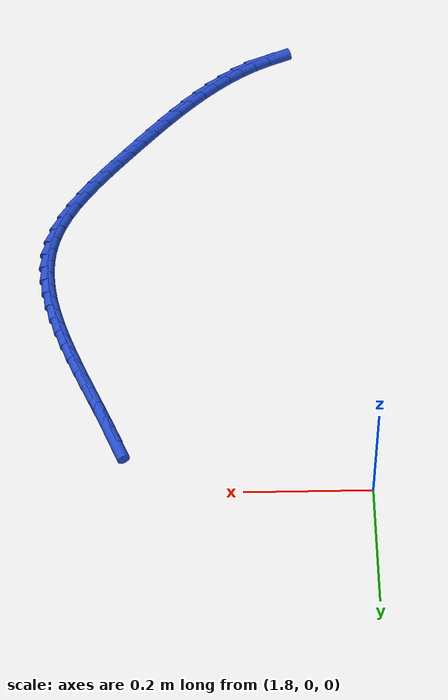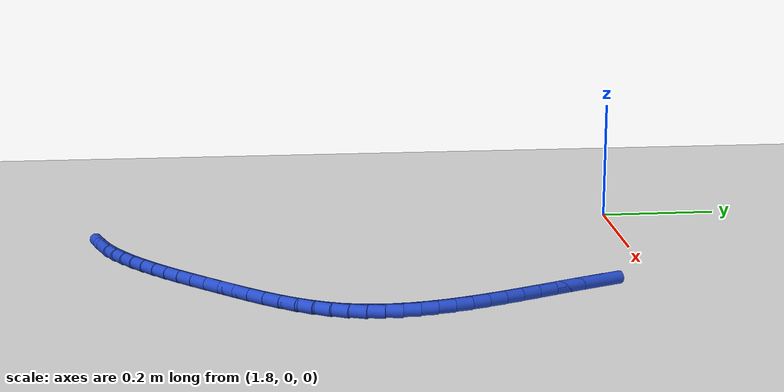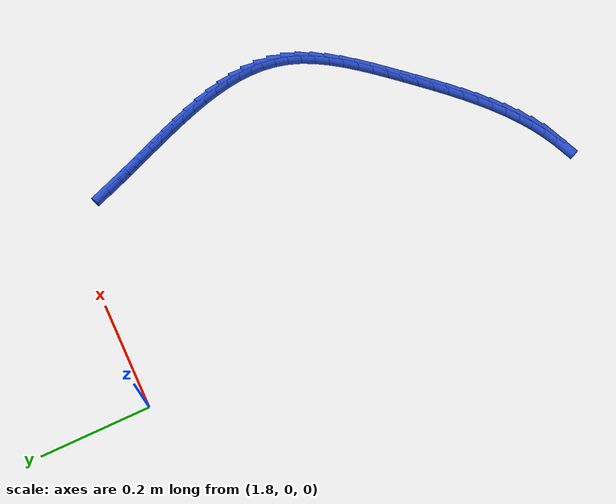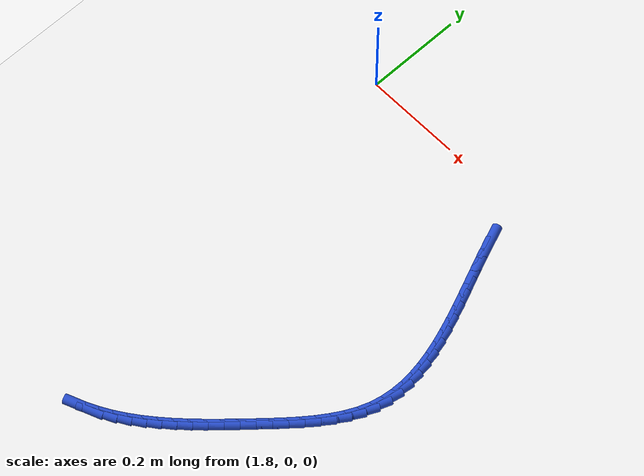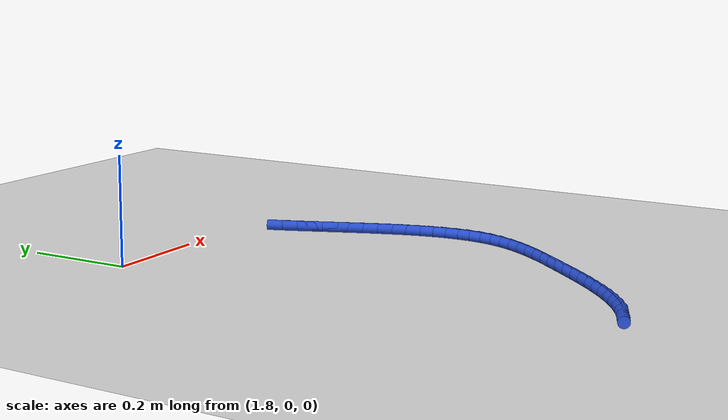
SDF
<sdf version="1.6">
 <world name="default">
  <model name="ground_plane">
   <static>1</static>
   <link name="link">
    <collision name="collision">
     <geometry><plane><normal>0 0 1</normal><size>100 100</size></plane></geometry>
     <surface><friction><ode><mu>100</mu><mu2>50</mu2></ode></friction></surface>
    </collision>
    <visual name="visual">
     <cast_shadows>0</cast_shadows>
     <geometry><plane><normal>0 0 1</normal><size>100 100</size></plane></geometry>
     <material>
      <script><uri>file://media/materials/scripts/gazebo.material</uri><name>Gazebo/WhiteGlow</name></script>
     </material>
    </visual>
   </link>
  </model>
  <model name="line">
   <link name="link_137">
    <pose>2.1986634969513794 -0.09417128476205537 0.01 0 1.57 -1.1929130961345482</pose>
    <collision name="collision">
     <geometry><cylinder><radius>0.01</radius><length>0.08</length></cylinder></geometry>
    </collision>
    <visual name="visual">
     <material>
      <script><name>Gazebo/Blue</name><uri>file://media/materials/scripts/gazebo.material</uri></script>
     </material>
     <geometry><cylinder><radius>0.01</radius><length>0.08</length></cylinder></geometry>
    </visual>
   </link>
   <link name="link_138">
    <pose>2.2097664182994072 -0.12214113574680754 0.01 0 1.57 -1.1784685675543916</pose>
    <collision name="collision">
     <geometry><cylinder><radius>0.01</radius><length>0.08</length></cylinder></geometry>
    </collision>
    <visual name="visual">
     <material>
      <script><name>Gazebo/Blue</name><uri>file://media/materials/scripts/gazebo.material</uri></script>
     </material>
     <geometry><cylinder><radius>0.01</radius><length>0.08</length></cylinder></geometry>
    </visual>
   </link>
   <link name="link_139">
    <pose>2.221284675509103 -0.14997789982116672 0.01 0 1.57 -1.171450232418282</pose>
    <collision name="collision">
     <geometry><cylinder><radius>0.01</radius><length>0.08</length></cylinder></geometry>
    </collision>
    <visual name="visual">
     <material>
      <script><name>Gazebo/Blue</name><uri>file://media/materials/scripts/gazebo.material</uri></script>
     </material>
     <geometry><cylinder><radius>0.01</radius><length>0.08</length></cylinder></geometry>
    </visual>
   </link>
   <link name="link_140">
    <pose>2.2329680758256494 -0.17766219746782325 0.01 0 1.57 -1.1718367749549523</pose>
    <collision name="collision">
     <geometry><cylinder><radius>0.01</radius><length>0.08</length></cylinder></geometry>
    </collision>
    <visual name="visual">
     <material>
      <script><name>Gazebo/Blue</name><uri>file://media/materials/scripts/gazebo.material</uri></script>
     </material>
     <geometry><cylinder><radius>0.01</radius><length>0.08</length></cylinder></geometry>
    </visual>
   </link>
   <link name="link_141">
    <pose>2.2445664264942273 -0.2051746491694661 0.01 0 1.57 -1.1797765171195522</pose>
    <collision name="collision">
     <geometry><cylinder><radius>0.01</radius><length>0.08</length></cylinder></geometry>
    </collision>
    <visual name="visual">
     <material>
      <script><name>Gazebo/Blue</name><uri>file://media/materials/scripts/gazebo.material</uri></script>
     </material>
     <geometry><cylinder><radius>0.01</radius><length>0.08</length></cylinder></geometry>
    </visual>
   </link>
   <link name="link_142">
    <pose>2.2558295347600184 -0.23249587540878563 0.01 0 1.57 -1.1955979438856927</pose>
    <collision name="collision">
     <geometry><cylinder><radius>0.01</radius><length>0.08</length></cylinder></geometry>
    </collision>
    <visual name="visual">
     <material>
      <script><name>Gazebo/Blue</name><uri>file://media/materials/scripts/gazebo.material</uri></script>
     </material>
     <geometry><cylinder><radius>0.01</radius><length>0.08</length></cylinder></geometry>
    </visual>
   </link>
   <link name="link_143">
    <pose>2.266507207868205 -0.2596064966684718 0.01 0 1.57 -1.2198168843262636</pose>
    <collision name="collision">
     <geometry><cylinder><radius>0.01</radius><length>0.08</length></cylinder></geometry>
    </collision>
    <visual name="visual">
     <material>
      <script><name>Gazebo/Blue</name><uri>file://media/materials/scripts/gazebo.material</uri></script>
     </material>
     <geometry><cylinder><radius>0.01</radius><length>0.08</length></cylinder></geometry>
    </visual>
   </link>
   <link name="link_144">
    <pose>2.2763492530639686 -0.28648713343121435 0.01 0 1.57 -1.253135980699387</pose>
    <collision name="collision">
     <geometry><cylinder><radius>0.01</radius><length>0.08</length></cylinder></geometry>
    </collision>
    <visual name="visual">
     <material>
      <script><name>Gazebo/Blue</name><uri>file://media/materials/scripts/gazebo.material</uri></script>
     </material>
     <geometry><cylinder><radius>0.01</radius><length>0.08</length></cylinder></geometry>
    </visual>
   </link>
   <link name="link_145">
    <pose>2.2851054775924906 -0.31311840617970343 0.01 0 1.57 -1.2964267711925008</pose>
    <collision name="collision">
     <geometry><cylinder><radius>0.01</radius><length>0.08</length></cylinder></geometry>
    </collision>
    <visual name="visual">
     <material>
      <script><name>Gazebo/Blue</name><uri>file://media/materials/scripts/gazebo.material</uri></script>
     </material>
     <geometry><cylinder><radius>0.01</radius><length>0.08</length></cylinder></geometry>
    </visual>
   </link>
   <link name="link_146">
    <pose>2.2925256886989525 -0.33948093539662944 0.01 0 1.57 -1.3506772097536721</pose>
    <collision name="collision">
     <geometry><cylinder><radius>0.01</radius><length>0.08</length></cylinder></geometry>
    </collision>
    <visual name="visual">
     <material>
      <script><name>Gazebo/Blue</name><uri>file://media/materials/scripts/gazebo.material</uri></script>
     </material>
     <geometry><cylinder><radius>0.01</radius><length>0.08</length></cylinder></geometry>
    </visual>
   </link>
   <link name="link_147">
    <pose>2.298359693628537 -0.36555534156468084 0.01 0 1.57 -1.4168784415857598</pose>
    <collision name="collision">
     <geometry><cylinder><radius>0.01</radius><length>0.08</length></cylinder></geometry>
    </collision>
    <visual name="visual">
     <material>
      <script><name>Gazebo/Blue</name><uri>file://media/materials/scripts/gazebo.material</uri></script>
     </material>
     <geometry><cylinder><radius>0.01</radius><length>0.08</length></cylinder></geometry>
    </visual>
   </link>
   <link name="link_148">
    <pose>2.3023572996264248 -0.39132224516654834 0.01 0 1.57 -1.4958187189876098</pose>
    <collision name="collision">
     <geometry><cylinder><radius>0.01</radius><length>0.08</length></cylinder></geometry>
    </collision>
    <visual name="visual">
     <material>
      <script><name>Gazebo/Blue</name><uri>file://media/materials/scripts/gazebo.material</uri></script>
     </material>
     <geometry><cylinder><radius>0.01</radius><length>0.08</length></cylinder></geometry>
    </visual>
   </link>
   <link name="link_149">
    <pose>2.3042683139377984 -0.4167622666849217 0.01 0 1.57 1.5538307831372313</pose>
    <collision name="collision">
     <geometry><cylinder><radius>0.01</radius><length>0.08</length></cylinder></geometry>
    </collision>
    <visual name="visual">
     <material>
      <script><name>Gazebo/Blue</name><uri>file://media/materials/scripts/gazebo.material</uri></script>
     </material>
     <geometry><cylinder><radius>0.01</radius><length>0.08</length></cylinder></geometry>
    </visual>
   </link>
   <link name="link_150">
    <pose>2.303842543807839 -0.4418560266024909 0.01 0 1.57 1.4495589648890987</pose>
    <collision name="collision">
     <geometry><cylinder><radius>0.01</radius><length>0.08</length></cylinder></geometry>
    </collision>
    <visual name="visual">
     <material>
      <script><name>Gazebo/Blue</name><uri>file://media/materials/scripts/gazebo.material</uri></script>
     </material>
     <geometry><cylinder><radius>0.01</radius><length>0.08</length></cylinder></geometry>
    </visual>
   </link>
   <link name="link_151">
    <pose>2.300829796481729 -0.4665841454019459 0.01 0 1.57 1.3349571877465345</pose>
    <collision name="collision">
     <geometry><cylinder><radius>0.01</radius><length>0.08</length></cylinder></geometry>
    </collision>
    <visual name="visual">
     <material>
      <script><name>Gazebo/Blue</name><uri>file://media/materials/scripts/gazebo.material</uri></script>
     </material>
     <geometry><cylinder><radius>0.01</radius><length>0.08</length></cylinder></geometry>
    </visual>
   </link>
   <link name="link_152">
    <pose>2.294979879204649 -0.4909272435659766 0.01 0 1.57 1.2165392431784534</pose>
    <collision name="collision">
     <geometry><cylinder><radius>0.01</radius><length>0.08</length></cylinder></geometry>
    </collision>
    <visual name="visual">
     <material>
      <script><name>Gazebo/Blue</name><uri>file://media/materials/scripts/gazebo.material</uri></script>
     </material>
     <geometry><cylinder><radius>0.01</radius><length>0.08</length></cylinder></geometry>
    </visual>
   </link>
   <link name="link_153">
    <pose>2.286123582260872 -0.5148722185605601 0.01 0 1.57 1.1132520043577392</pose>
    <collision name="collision">
     <geometry><cylinder><radius>0.01</radius><length>0.08</length></cylinder></geometry>
    </collision>
    <visual name="visual">
     <material>
      <script><name>Gazebo/Blue</name><uri>file://media/materials/scripts/gazebo.material</uri></script>
     </material>
     <geometry><cylinder><radius>0.01</radius><length>0.08</length></cylinder></geometry>
    </visual>
   </link>
   <link name="link_154">
    <pose>2.274519382305638 -0.5384391177585302 0.01 0 1.57 1.0297091559715896</pose>
    <collision name="collision">
     <geometry><cylinder><radius>0.01</radius><length>0.08</length></cylinder></geometry>
    </collision>
    <visual name="visual">
     <material>
      <script><name>Gazebo/Blue</name><uri>file://media/materials/scripts/gazebo.material</uri></script>
     </material>
     <geometry><cylinder><radius>0.01</radius><length>0.08</length></cylinder></geometry>
    </visual>
   </link>
   <link name="link_155">
    <pose>2.2605664251445394 -0.5616588917775951 0.01 0 1.57 0.963891089626896</pose>
    <collision name="collision">
     <geometry><cylinder><radius>0.01</radius><length>0.08</length></cylinder></geometry>
    </collision>
    <visual name="visual">
     <material>
      <script><name>Gazebo/Blue</name><uri>file://media/materials/scripts/gazebo.material</uri></script>
     </material>
     <geometry><cylinder><radius>0.01</radius><length>0.08</length></cylinder></geometry>
    </visual>
   </link>
   <link name="link_156">
    <pose>2.2446639413268534 -0.5845624978039307 0.01 0 1.57 0.9136021178625331</pose>
    <collision name="collision">
     <geometry><cylinder><radius>0.01</radius><length>0.08</length></cylinder></geometry>
    </collision>
    <visual name="visual">
     <material>
      <script><name>Gazebo/Blue</name><uri>file://media/materials/scripts/gazebo.material</uri></script>
     </material>
     <geometry><cylinder><radius>0.01</radius><length>0.08</length></cylinder></geometry>
    </visual>
   </link>
   <link name="link_157">
    <pose>2.227211161401858 -0.6071808930237157 0.01 0 1.57 0.8769279075639516</pose>
    <collision name="collision">
     <geometry><cylinder><radius>0.01</radius><length>0.08</length></cylinder></geometry>
    </collision>
    <visual name="visual">
     <material>
      <script><name>Gazebo/Blue</name><uri>file://media/materials/scripts/gazebo.material</uri></script>
     </material>
     <geometry><cylinder><radius>0.01</radius><length>0.08</length></cylinder></geometry>
    </visual>
   </link>
   <link name="link_158">
    <pose>2.2086073159188286 -0.6295450346231279 0.01 0 1.57 0.8524156707032672</pose>
    <collision name="collision">
     <geometry><cylinder><radius>0.01</radius><length>0.08</length></cylinder></geometry>
    </collision>
    <visual name="visual">
     <material>
      <script><name>Gazebo/Blue</name><uri>file://media/materials/scripts/gazebo.material</uri></script>
     </material>
     <geometry><cylinder><radius>0.01</radius><length>0.08</length></cylinder></geometry>
    </visual>
   </link>
   <link name="link_159">
    <pose>2.1892516354270426 -0.6516858797883444 0.01 0 1.57 0.8391244557624837</pose>
    <collision name="collision">
     <geometry><cylinder><radius>0.01</radius><length>0.08</length></cylinder></geometry>
    </collision>
    <visual name="visual">
     <material>
      <script><name>Gazebo/Blue</name><uri>file://media/materials/scripts/gazebo.material</uri></script>
     </material>
     <geometry><cylinder><radius>0.01</radius><length>0.08</length></cylinder></geometry>
    </visual>
   </link>
   <link name="link_160">
    <pose>2.1695433503707533 -0.6736343856647974 0.01 0 1.57 0.833794098624017</pose>
    <collision name="collision">
     <geometry><cylinder><radius>0.01</radius><length>0.08</length></cylinder></geometry>
    </collision>
    <visual name="visual">
     <material>
      <script><name>Gazebo/Blue</name><uri>file://media/materials/scripts/gazebo.material</uri></script>
     </material>
     <geometry><cylinder><radius>0.01</radius><length>0.08</length></cylinder></geometry>
    </visual>
   </link>
   <link name="link_161">
    <pose>2.149798491764039 -0.6953892307283557 0.01 0 1.57 0.8253416419499807</pose>
    <collision name="collision">
     <geometry><cylinder><radius>0.01</radius><length>0.08</length></cylinder></geometry>
    </collision>
    <visual name="visual">
     <material>
      <script><name>Gazebo/Blue</name><uri>file://media/materials/scripts/gazebo.material</uri></script>
     </material>
     <geometry><cylinder><radius>0.01</radius><length>0.08</length></cylinder></geometry>
    </visual>
   </link>
   <link name="link_162">
    <pose>2.130011022486638 -0.71682414150674 0.01 0 1.57 0.8109460803293577</pose>
    <collision name="collision">
     <geometry><cylinder><radius>0.01</radius><length>0.08</length></cylinder></geometry>
    </collision>
    <visual name="visual">
     <material>
      <script><name>Gazebo/Blue</name><uri>file://media/materials/scripts/gazebo.material</uri></script>
     </material>
     <geometry><cylinder><radius>0.01</radius><length>0.08</length></cylinder></geometry>
    </visual>
   </link>
   <link name="link_163">
    <pose>2.11009698484438 -0.7377826138824354 0.01 0 1.57 0.7903663719487736</pose>
    <collision name="collision">
     <geometry><cylinder><radius>0.01</radius><length>0.08</length></cylinder></geometry>
    </collision>
    <visual name="visual">
     <material>
      <script><name>Gazebo/Blue</name><uri>file://media/materials/scripts/gazebo.material</uri></script>
     </material>
     <geometry><cylinder><radius>0.01</radius><length>0.08</length></cylinder></geometry>
    </visual>
   </link>
   <link name="link_164">
    <pose>2.0899724211430906 -0.758108143737927 0.01 0 1.57 0.7633028647757164</pose>
    <collision name="collision">
     <geometry><cylinder><radius>0.01</radius><length>0.08</length></cylinder></geometry>
    </collision>
    <visual name="visual">
     <material>
      <script><name>Gazebo/Blue</name><uri>file://media/materials/scripts/gazebo.material</uri></script>
     </material>
     <geometry><cylinder><radius>0.01</radius><length>0.08</length></cylinder></geometry>
    </visual>
   </link>
   <link name="link_165">
    <pose>2.0695533736886005 -0.7776442269556991 0.01 0 1.57 0.7294148409255781</pose>
    <collision name="collision">
     <geometry><cylinder><radius>0.01</radius><length>0.08</length></cylinder></geometry>
    </collision>
    <visual name="visual">
     <material>
      <script><name>Gazebo/Blue</name><uri>file://media/materials/scripts/gazebo.material</uri></script>
     </material>
     <geometry><cylinder><radius>0.01</radius><length>0.08</length></cylinder></geometry>
    </visual>
   </link>
   <link name="link_166">
    <pose>2.0487558847867366 -0.7962343594182371 0.01 0 1.57 0.6883505060243752</pose>
    <collision name="collision">
     <geometry><cylinder><radius>0.01</radius><length>0.08</length></cylinder></geometry>
    </collision>
    <visual name="visual">
     <material>
      <script><name>Gazebo/Blue</name><uri>file://media/materials/scripts/gazebo.material</uri></script>
     </material>
     <geometry><cylinder><radius>0.01</radius><length>0.08</length></cylinder></geometry>
    </visual>
   </link>
   <link name="link_167">
    <pose>2.0274959967433266 -0.8137220370080256 0.01 0 1.57 0.6397938486795193</pose>
    <collision name="collision">
     <geometry><cylinder><radius>0.01</radius><length>0.08</length></cylinder></geometry>
    </collision>
    <visual name="visual">
     <material>
      <script><name>Gazebo/Blue</name><uri>file://media/materials/scripts/gazebo.material</uri></script>
     </material>
     <geometry><cylinder><radius>0.01</radius><length>0.08</length></cylinder></geometry>
    </visual>
   </link>
   <link name="link_168">
    <pose>2.0056897518641987 -0.8299507556075498 0.01 0 1.57 0.5835321425208675</pose>
    <collision name="collision">
     <geometry><cylinder><radius>0.01</radius><length>0.08</length></cylinder></geometry>
    </collision>
    <visual name="visual">
     <material>
      <script><name>Gazebo/Blue</name><uri>file://media/materials/scripts/gazebo.material</uri></script>
     </material>
     <geometry><cylinder><radius>0.01</radius><length>0.08</length></cylinder></geometry>
    </visual>
   </link>
   <link name="link_169">
    <pose>1.983253192455182 -0.8447640110992949 0.01 0 1.57 0.519544639685761</pose>
    <collision name="collision">
     <geometry><cylinder><radius>0.01</radius><length>0.08</length></cylinder></geometry>
    </collision>
    <visual name="visual">
     <material>
      <script><name>Gazebo/Blue</name><uri>file://media/materials/scripts/gazebo.material</uri></script>
     </material>
     <geometry><cylinder><radius>0.01</radius><length>0.08</length></cylinder></geometry>
    </visual>
   </link>
   <link name="link_170">
    <pose>1.960102360822104 -0.8580052993657457 0.01 0 1.57 0.44816601732587946</pose>
    <collision name="collision">
     <geometry><cylinder><radius>0.01</radius><length>0.08</length></cylinder></geometry>
    </collision>
    <visual name="visual">
     <material>
      <script><name>Gazebo/Blue</name><uri>file://media/materials/scripts/gazebo.material</uri></script>
     </material>
     <geometry><cylinder><radius>0.01</radius><length>0.08</length></cylinder></geometry>
    </visual>
   </link>
   <link name="link_171">
    <pose>1.9361536740364207 -0.869519711509052 0.01 0 1.57 0.3824148122255581</pose>
    <collision name="collision">
     <geometry><cylinder><radius>0.01</radius><length>0.08</length></cylinder></geometry>
    </collision>
    <visual name="visual">
     <material>
      <script><name>Gazebo/Blue</name><uri>file://media/materials/scripts/gazebo.material</uri></script>
     </material>
     <geometry><cylinder><radius>0.01</radius><length>0.08</length></cylinder></geometry>
    </visual>
   </link>
  </model>
 </world>
</sdf>
